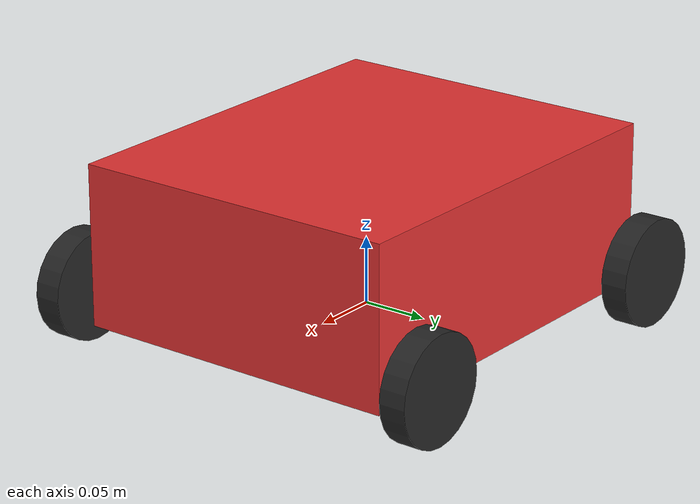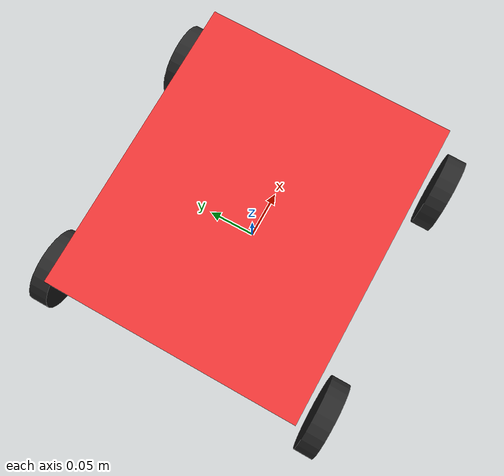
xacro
<?xml version="1.0"?>
<robot name="target" xmlns:xacro="http://www.ros.org/wiki/xacro">
  <material name="red"><color rgba="0.9 0.2 0.2 1"/></material>
  <material name="dark"><color rgba="0.15 0.15 0.15 1"/></material>

  <link name="base_footprint"/>
  <joint name="base_joint" type="fixed">
    <parent link="base_footprint"/><child link="base_link"/>
    <origin xyz="0 0 0.06" rpy="0 0 0"/>
  </joint>

  <link name="base_link">
    <visual><geometry><box size="0.3 0.25 0.12"/></geometry><material name="red"/></visual>
    <collision><geometry><box size="0.3 0.25 0.12"/></geometry></collision>
    <inertial><mass value="3.0"/><inertia ixx="0.02" iyy="0.03" izz="0.03" ixy="0" ixz="0" iyz="0"/></inertial>
  </link>

  <!-- 4 wheels (visual only) -->
  <xacro:macro name="wheel" params="name x y">
    <joint name="${name}_wheel_joint" type="continuous">
      <parent link="base_link"/><child link="${name}_wheel_link"/>
      <origin xyz="${x} ${y} -0.04" rpy="1.57 0 0"/>
      <axis xyz="0 0 1"/>
    </joint>
    <link name="${name}_wheel_link">
      <visual><geometry><cylinder radius="0.04" length="0.02"/></geometry><material name="dark"/></visual>
      <inertial><mass value="0.05"/><inertia ixx="1e-5" iyy="1e-5" izz="1e-5" ixy="0" ixz="0" iyz="0"/></inertial>
    </link>
  </xacro:macro>
  <xacro:wheel name="fl" x="0.13" y="0.15"/>
  <xacro:wheel name="fr" x="0.13" y="-0.15"/>
  <xacro:wheel name="rl" x="-0.13" y="0.15"/>
  <xacro:wheel name="rr" x="-0.13" y="-0.15"/>

  <gazebo>
    <plugin name="target_planar_move" filename="libgazebo_ros_planar_move.so">
      <ros><namespace>target</namespace></ros>
      <command_topic>cmd_vel</command_topic>
      <odometry_topic>odom</odometry_topic>
      <odometry_frame>target/odom</odometry_frame>
      <robot_base_frame>target/base_link</robot_base_frame>
      <publish_odom>true</publish_odom>
      <publish_tf>true</publish_tf>
      <broadcast_tf>true</broadcast_tf>
      <update_rate>50</update_rate>
    </plugin>
  </gazebo>
  <gazebo reference="base_link"><material>Gazebo/Red</material></gazebo>
</robot>
